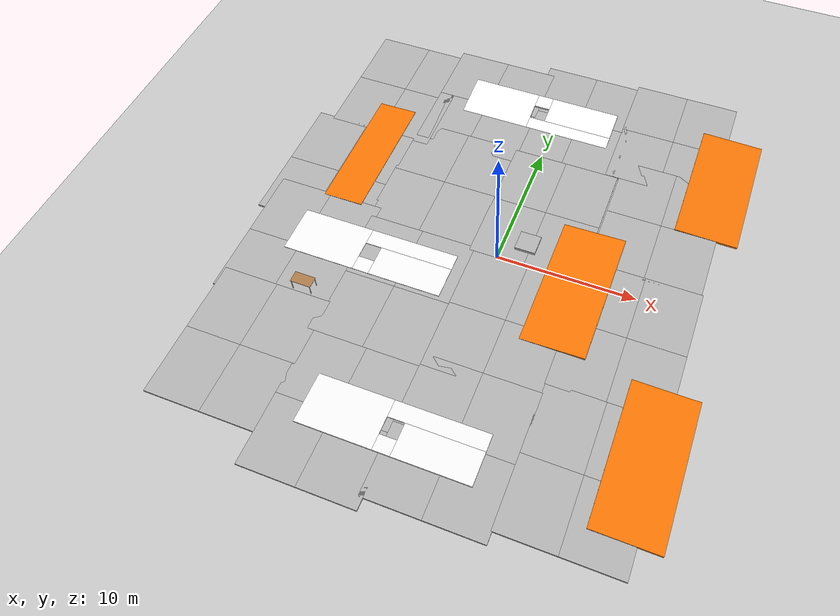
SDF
<sdf version="1.5">
 <world name="svo_world">
  <light name="sun" type="directional">
   <pose>0 0 10 0 -0 0</pose>
   <diffuse>0.8 0.8 0.8 1</diffuse>
   <specular>0.1 0.1 0.1 1</specular>
   <attenuation>
    <range>1000</range>
    <constant>0.9</constant>
    <linear>0.01</linear>
    <quadratic>0.001</quadratic>
   </attenuation>
   <direction>-0.5 0.5 -1</direction>
  </light>
  <model name="ground_plane">
   <static>1</static>
   <link name="link">
    <collision name="collision">
     <geometry><plane><normal>0 0 1</normal><size>100 100</size></plane></geometry>
     <surface><friction><ode><mu>100</mu><mu2>50</mu2></ode></friction></surface>
    </collision>
    <visual name="visual">
     <cast_shadows>0</cast_shadows>
     <geometry><plane><normal>0 0 1</normal><size>100 100</size></plane></geometry>
     <material>
      <script><uri>file://media/materials/scripts/gazebo.material</uri><name>Gazebo/Grey</name></script>
     </material>
    </visual>
   </link>
  </model>
  <atmosphere type="adiabatic"/>
  <physics name="default_physics" default="0" type="ode">
   <max_step_size>0.001</max_step_size>
   <real_time_factor>1</real_time_factor>
   <real_time_update_rate>1000</real_time_update_rate>
   <gravity>0 0 -9.8</gravity>
   <magnetic_field>6e-06 2.3e-05 -4.2e-05</magnetic_field>
  </physics>
  <scene><ambient>0.4 0.4 0.4 1</ambient><background>0.7 0.7 0.7 1</background><shadows>1</shadows></scene>
  <spherical_coordinates>
   <surface_model>EARTH_WGS84</surface_model>
   <latitude_deg>0</latitude_deg>
   <longitude_deg>0</longitude_deg>
   <elevation>0</elevation>
   <heading_deg>0</heading_deg>
  </spherical_coordinates>
  <model name="mud_box">
   <static>1</static>
   <link name="link">
    <collision name="collision"><geometry><box><size>8 10 0.2</size></box></geometry></collision>
    <visual name="visual_1">
     <pose>-2 2.5 0 0 -0 0</pose>
     <cast_shadows>0</cast_shadows>
     <geometry><box><size>4 5 0.2</size></box></geometry>
     <material>
      <script>
       <uri>model://mud_box/materials/scripts</uri>
       <uri>model://mud_box/materials/textures</uri>
       <name>vrc/mud</name>
      </script>
     </material>
    </visual>
    <visual name="visual_2">
     <pose>2 2.5 0 0 -0 0</pose>
     <cast_shadows>0</cast_shadows>
     <geometry><box><size>4 5 0.2</size></box></geometry>
     <material>
      <script>
       <uri>model://mud_box/materials/scripts</uri>
       <uri>model://mud_box/materials/textures</uri>
       <name>vrc/mud</name>
      </script>
     </material>
    </visual>
    <visual name="visual_3">
     <pose>2 -2.5 0 0 -0 0</pose>
     <cast_shadows>0</cast_shadows>
     <geometry><box><size>4 5 0.2</size></box></geometry>
     <material>
      <script>
       <uri>model://mud_box/materials/scripts</uri>
       <uri>model://mud_box/materials/textures</uri>
       <name>vrc/mud</name>
      </script>
     </material>
    </visual>
    <visual name="visual_4">
     <pose>-2 -2.5 0 0 -0 0</pose>
     <cast_shadows>0</cast_shadows>
     <geometry><box><size>4 5 0.2</size></box></geometry>
     <material>
      <script>
       <uri>model://mud_box/materials/scripts</uri>
       <uri>model://mud_box/materials/textures</uri>
       <name>vrc/mud</name>
      </script>
     </material>
    </visual>
   </link>
   <pose>-5.68226 -4.79877 0 0 -0 0</pose>
  </model>
  <model name="mud_box_0">
   <static>1</static>
   <link name="link">
    <collision name="collision"><geometry><box><size>8 10 0.2</size></box></geometry></collision>
    <visual name="visual_1">
     <pose>-2 2.5 0 0 -0 0</pose>
     <cast_shadows>0</cast_shadows>
     <geometry><box><size>4 5 0.2</size></box></geometry>
     <material>
      <script>
       <uri>model://mud_box/materials/scripts</uri>
       <uri>model://mud_box/materials/textures</uri>
       <name>vrc/mud</name>
      </script>
     </material>
    </visual>
    <visual name="visual_2">
     <pose>2 2.5 0 0 -0 0</pose>
     <cast_shadows>0</cast_shadows>
     <geometry><box><size>4 5 0.2</size></box></geometry>
     <material>
      <script>
       <uri>model://mud_box/materials/scripts</uri>
       <uri>model://mud_box/materials/textures</uri>
       <name>vrc/mud</name>
      </script>
     </material>
    </visual>
    <visual name="visual_3">
     <pose>2 -2.5 0 0 -0 0</pose>
     <cast_shadows>0</cast_shadows>
     <geometry><box><size>4 5 0.2</size></box></geometry>
     <material>
      <script>
       <uri>model://mud_box/materials/scripts</uri>
       <uri>model://mud_box/materials/textures</uri>
       <name>vrc/mud</name>
      </script>
     </material>
    </visual>
    <visual name="visual_4">
     <pose>-2 -2.5 0 0 -0 0</pose>
     <cast_shadows>0</cast_shadows>
     <geometry><box><size>4 5 0.2</size></box></geometry>
     <material>
      <script>
       <uri>model://mud_box/materials/scripts</uri>
       <uri>model://mud_box/materials/textures</uri>
       <name>vrc/mud</name>
      </script>
     </material>
    </visual>
   </link>
   <pose>-5.96642 5.00089 0 0 -0 0</pose>
  </model>
  <model name="mud_box_1">
   <static>1</static>
   <link name="link">
    <collision name="collision"><geometry><box><size>8 10 0.2</size></box></geometry></collision>
    <visual name="visual_1">
     <pose>-2 2.5 0 0 -0 0</pose>
     <cast_shadows>0</cast_shadows>
     <geometry><box><size>4 5 0.2</size></box></geometry>
     <material>
      <script>
       <uri>model://mud_box/materials/scripts</uri>
       <uri>model://mud_box/materials/textures</uri>
       <name>vrc/mud</name>
      </script>
     </material>
    </visual>
    <visual name="visual_2">
     <pose>2 2.5 0 0 -0 0</pose>
     <cast_shadows>0</cast_shadows>
     <geometry><box><size>4 5 0.2</size></box></geometry>
     <material>
      <script>
       <uri>model://mud_box/materials/scripts</uri>
       <uri>model://mud_box/materials/textures</uri>
       <name>vrc/mud</name>
      </script>
     </material>
    </visual>
    <visual name="visual_3">
     <pose>2 -2.5 0 0 -0 0</pose>
     <cast_shadows>0</cast_shadows>
     <geometry><box><size>4 5 0.2</size></box></geometry>
     <material>
      <script>
       <uri>model://mud_box/materials/scripts</uri>
       <uri>model://mud_box/materials/textures</uri>
       <name>vrc/mud</name>
      </script>
     </material>
    </visual>
    <visual name="visual_4">
     <pose>-2 -2.5 0 0 -0 0</pose>
     <cast_shadows>0</cast_shadows>
     <geometry><box><size>4 5 0.2</size></box></geometry>
     <material>
      <script>
       <uri>model://mud_box/materials/scripts</uri>
       <uri>model://mud_box/materials/textures</uri>
       <name>vrc/mud</name>
      </script>
     </material>
    </visual>
   </link>
   <pose>-5.37597 -14.6349 0 0 -0 0</pose>
  </model>
  <model name="mud_box_3">
   <static>1</static>
   <link name="link">
    <collision name="collision"><geometry><box><size>8 10 0.2</size></box></geometry></collision>
    <visual name="visual_1">
     <pose>-2 2.5 0 0 -0 0</pose>
     <cast_shadows>0</cast_shadows>
     <geometry><box><size>4 5 0.2</size></box></geometry>
     <material>
      <script>
       <uri>model://mud_box/materials/scripts</uri>
       <uri>model://mud_box/materials/textures</uri>
       <name>vrc/mud</name>
      </script>
     </material>
    </visual>
    <visual name="visual_2">
     <pose>2 2.5 0 0 -0 0</pose>
     <cast_shadows>0</cast_shadows>
     <geometry><box><size>4 5 0.2</size></box></geometry>
     <material>
      <script>
       <uri>model://mud_box/materials/scripts</uri>
       <uri>model://mud_box/materials/textures</uri>
       <name>vrc/mud</name>
      </script>
     </material>
    </visual>
    <visual name="visual_3">
     <pose>2 -2.5 0 0 -0 0</pose>
     <cast_shadows>0</cast_shadows>
     <geometry><box><size>4 5 0.2</size></box></geometry>
     <material>
      <script>
       <uri>model://mud_box/materials/scripts</uri>
       <uri>model://mud_box/materials/textures</uri>
       <name>vrc/mud</name>
      </script>
     </material>
    </visual>
    <visual name="visual_4">
     <pose>-2 -2.5 0 0 -0 0</pose>
     <cast_shadows>0</cast_shadows>
     <geometry><box><size>4 5 0.2</size></box></geometry>
     <material>
      <script>
       <uri>model://mud_box/materials/scripts</uri>
       <uri>model://mud_box/materials/textures</uri>
       <name>vrc/mud</name>
      </script>
     </material>
    </visual>
   </link>
   <pose>1.99002 4.88427 0 0 -0 0</pose>
  </model>
  <model name="mud_box_4">
   <static>1</static>
   <link name="link">
    <collision name="collision"><geometry><box><size>8 10 0.2</size></box></geometry></collision>
    <visual name="visual_1">
     <pose>-2 2.5 0 0 -0 0</pose>
     <cast_shadows>0</cast_shadows>
     <geometry><box><size>4 5 0.2</size></box></geometry>
     <material>
      <script>
       <uri>model://mud_box/materials/scripts</uri>
       <uri>model://mud_box/materials/textures</uri>
       <name>vrc/mud</name>
      </script>
     </material>
    </visual>
    <visual name="visual_2">
     <pose>2 2.5 0 0 -0 0</pose>
     <cast_shadows>0</cast_shadows>
     <geometry><box><size>4 5 0.2</size></box></geometry>
     <material>
      <script>
       <uri>model://mud_box/materials/scripts</uri>
       <uri>model://mud_box/materials/textures</uri>
       <name>vrc/mud</name>
      </script>
     </material>
    </visual>
    <visual name="visual_3">
     <pose>2 -2.5 0 0 -0 0</pose>
     <cast_shadows>0</cast_shadows>
     <geometry><box><size>4 5 0.2</size></box></geometry>
     <material>
      <script>
       <uri>model://mud_box/materials/scripts</uri>
       <uri>model://mud_box/materials/textures</uri>
       <name>vrc/mud</name>
      </script>
     </material>
    </visual>
    <visual name="visual_4">
     <pose>-2 -2.5 0 0 -0 0</pose>
     <cast_shadows>0</cast_shadows>
     <geometry><box><size>4 5 0.2</size></box></geometry>
     <material>
      <script>
       <uri>model://mud_box/materials/scripts</uri>
       <uri>model://mud_box/materials/textures</uri>
       <name>vrc/mud</name>
      </script>
     </material>
    </visual>
   </link>
   <pose>10.1818 -3.15087 0 0 -0 0</pose>
  </model>
  <model name="mud_box_5">
   <static>1</static>
   <link name="link">
    <collision name="collision"><geometry><box><size>8 10 0.2</size></box></geometry></collision>
    <visual name="visual_1">
     <pose>-2 2.5 0 0 -0 0</pose>
     <cast_shadows>0</cast_shadows>
     <geometry><box><size>4 5 0.2</size></box></geometry>
     <material>
      <script>
       <uri>model://mud_box/materials/scripts</uri>
       <uri>model://mud_box/materials/textures</uri>
       <name>vrc/mud</name>
      </script>
     </material>
    </visual>
    <visual name="visual_2">
     <pose>2 2.5 0 0 -0 0</pose>
     <cast_shadows>0</cast_shadows>
     <geometry><box><size>4 5 0.2</size></box></geometry>
     <material>
      <script>
       <uri>model://mud_box/materials/scripts</uri>
       <uri>model://mud_box/materials/textures</uri>
       <name>vrc/mud</name>
      </script>
     </material>
    </visual>
    <visual name="visual_3">
     <pose>2 -2.5 0 0 -0 0</pose>
     <cast_shadows>0</cast_shadows>
     <geometry><box><size>4 5 0.2</size></box></geometry>
     <material>
      <script>
       <uri>model://mud_box/materials/scripts</uri>
       <uri>model://mud_box/materials/textures</uri>
       <name>vrc/mud</name>
      </script>
     </material>
    </visual>
    <visual name="visual_4">
     <pose>-2 -2.5 0 0 -0 0</pose>
     <cast_shadows>0</cast_shadows>
     <geometry><box><size>4 5 0.2</size></box></geometry>
     <material>
      <script>
       <uri>model://mud_box/materials/scripts</uri>
       <uri>model://mud_box/materials/textures</uri>
       <name>vrc/mud</name>
      </script>
     </material>
    </visual>
   </link>
   <pose>10.0851 6.64151 0 0 -0 0</pose>
  </model>
  <model name="mud_box_6">
   <static>1</static>
   <link name="link">
    <collision name="collision"><geometry><box><size>8 10 0.2</size></box></geometry></collision>
    <visual name="visual_1">
     <pose>-2 2.5 0 0 -0 0</pose>
     <cast_shadows>0</cast_shadows>
     <geometry><box><size>4 5 0.2</size></box></geometry>
     <material>
      <script>
       <uri>model://mud_box/materials/scripts</uri>
       <uri>model://mud_box/materials/textures</uri>
       <name>vrc/mud</name>
      </script>
     </material>
    </visual>
    <visual name="visual_2">
     <pose>2 2.5 0 0 -0 0</pose>
     <cast_shadows>0</cast_shadows>
     <geometry><box><size>4 5 0.2</size></box></geometry>
     <material>
      <script>
       <uri>model://mud_box/materials/scripts</uri>
       <uri>model://mud_box/materials/textures</uri>
       <name>vrc/mud</name>
      </script>
     </material>
    </visual>
    <visual name="visual_3">
     <pose>2 -2.5 0 0 -0 0</pose>
     <cast_shadows>0</cast_shadows>
     <geometry><box><size>4 5 0.2</size></box></geometry>
     <material>
      <script>
       <uri>model://mud_box/materials/scripts</uri>
       <uri>model://mud_box/materials/textures</uri>
       <name>vrc/mud</name>
      </script>
     </material>
    </visual>
    <visual name="visual_4">
     <pose>-2 -2.5 0 0 -0 0</pose>
     <cast_shadows>0</cast_shadows>
     <geometry><box><size>4 5 0.2</size></box></geometry>
     <material>
      <script>
       <uri>model://mud_box/materials/scripts</uri>
       <uri>model://mud_box/materials/textures</uri>
       <name>vrc/mud</name>
      </script>
     </material>
    </visual>
   </link>
   <pose>10.2281 -13.0017 0 0 -0 0</pose>
  </model>
  <model name="mud_box_7">
   <static>1</static>
   <link name="link">
    <collision name="collision"><geometry><box><size>8 10 0.2</size></box></geometry></collision>
    <visual name="visual_1">
     <pose>-2 2.5 0 0 -0 0</pose>
     <cast_shadows>0</cast_shadows>
     <geometry><box><size>4 5 0.2</size></box></geometry>
     <material>
      <script>
       <uri>model://mud_box/materials/scripts</uri>
       <uri>model://mud_box/materials/textures</uri>
       <name>vrc/mud</name>
      </script>
     </material>
    </visual>
    <visual name="visual_2">
     <pose>2 2.5 0 0 -0 0</pose>
     <cast_shadows>0</cast_shadows>
     <geometry><box><size>4 5 0.2</size></box></geometry>
     <material>
      <script>
       <uri>model://mud_box/materials/scripts</uri>
       <uri>model://mud_box/materials/textures</uri>
       <name>vrc/mud</name>
      </script>
     </material>
    </visual>
    <visual name="visual_3">
     <pose>2 -2.5 0 0 -0 0</pose>
     <cast_shadows>0</cast_shadows>
     <geometry><box><size>4 5 0.2</size></box></geometry>
     <material>
      <script>
       <uri>model://mud_box/materials/scripts</uri>
       <uri>model://mud_box/materials/textures</uri>
       <name>vrc/mud</name>
      </script>
     </material>
    </visual>
    <visual name="visual_4">
     <pose>-2 -2.5 0 0 -0 0</pose>
     <cast_shadows>0</cast_shadows>
     <geometry><box><size>4 5 0.2</size></box></geometry>
     <material>
      <script>
       <uri>model://mud_box/materials/scripts</uri>
       <uri>model://mud_box/materials/textures</uri>
       <name>vrc/mud</name>
      </script>
     </material>
    </visual>
   </link>
   <pose>2.3022 -13.8279 0 0 -0 0</pose>
  </model>
  <model name="mud_box_8">
   <static>1</static>
   <link name="link">
    <collision name="collision"><geometry><box><size>8 10 0.2</size></box></geometry></collision>
    <visual name="visual_1">
     <pose>-2 2.5 0 0 -0 0</pose>
     <cast_shadows>0</cast_shadows>
     <geometry><box><size>4 5 0.2</size></box></geometry>
     <material>
      <script>
       <uri>model://mud_box/materials/scripts</uri>
       <uri>model://mud_box/materials/textures</uri>
       <name>vrc/mud</name>
      </script>
     </material>
    </visual>
    <visual name="visual_2">
     <pose>2 2.5 0 0 -0 0</pose>
     <cast_shadows>0</cast_shadows>
     <geometry><box><size>4 5 0.2</size></box></geometry>
     <material>
      <script>
       <uri>model://mud_box/materials/scripts</uri>
       <uri>model://mud_box/materials/textures</uri>
       <name>vrc/mud</name>
      </script>
     </material>
    </visual>
    <visual name="visual_3">
     <pose>2 -2.5 0 0 -0 0</pose>
     <cast_shadows>0</cast_shadows>
     <geometry><box><size>4 5 0.2</size></box></geometry>
     <material>
      <script>
       <uri>model://mud_box/materials/scripts</uri>
       <uri>model://mud_box/materials/textures</uri>
       <name>vrc/mud</name>
      </script>
     </material>
    </visual>
    <visual name="visual_4">
     <pose>-2 -2.5 0 0 -0 0</pose>
     <cast_shadows>0</cast_shadows>
     <geometry><box><size>4 5 0.2</size></box></geometry>
     <material>
      <script>
       <uri>model://mud_box/materials/scripts</uri>
       <uri>model://mud_box/materials/textures</uri>
       <name>vrc/mud</name>
      </script>
     </material>
    </visual>
   </link>
   <pose>2.3135 -4.65178 0 0 -0 0</pose>
  </model>
  <model name="mud_box_9">
   <static>1</static>
   <link name="link">
    <collision name="collision"><geometry><box><size>8 10 0.2</size></box></geometry></collision>
    <visual name="visual_1">
     <pose>-2 2.5 0 0 -0 0</pose>
     <cast_shadows>0</cast_shadows>
     <geometry><box><size>4 5 0.2</size></box></geometry>
     <material>
      <script>
       <uri>model://mud_box/materials/scripts</uri>
       <uri>model://mud_box/materials/textures</uri>
       <name>vrc/mud</name>
      </script>
     </material>
    </visual>
    <visual name="visual_2">
     <pose>2 2.5 0 0 -0 0</pose>
     <cast_shadows>0</cast_shadows>
     <geometry><box><size>4 5 0.2</size></box></geometry>
     <material>
      <script>
       <uri>model://mud_box/materials/scripts</uri>
       <uri>model://mud_box/materials/textures</uri>
       <name>vrc/mud</name>
      </script>
     </material>
    </visual>
    <visual name="visual_3">
     <pose>2 -2.5 0 0 -0 0</pose>
     <cast_shadows>0</cast_shadows>
     <geometry><box><size>4 5 0.2</size></box></geometry>
     <material>
      <script>
       <uri>model://mud_box/materials/scripts</uri>
       <uri>model://mud_box/materials/textures</uri>
       <name>vrc/mud</name>
      </script>
     </material>
    </visual>
    <visual name="visual_4">
     <pose>-2 -2.5 0 0 -0 0</pose>
     <cast_shadows>0</cast_shadows>
     <geometry><box><size>4 5 0.2</size></box></geometry>
     <material>
      <script>
       <uri>model://mud_box/materials/scripts</uri>
       <uri>model://mud_box/materials/textures</uri>
       <name>vrc/mud</name>
      </script>
     </material>
    </visual>
   </link>
   <pose>-13.1914 -12.4554 0 0 -0 0</pose>
  </model>
  <model name="mud_box_10">
   <static>1</static>
   <link name="link">
    <collision name="collision"><geometry><box><size>8 10 0.2</size></box></geometry></collision>
    <visual name="visual_1">
     <pose>-2 2.5 0 0 -0 0</pose>
     <cast_shadows>0</cast_shadows>
     <geometry><box><size>4 5 0.2</size></box></geometry>
     <material>
      <script>
       <uri>model://mud_box/materials/scripts</uri>
       <uri>model://mud_box/materials/textures</uri>
       <name>vrc/mud</name>
      </script>
     </material>
    </visual>
    <visual name="visual_2">
     <pose>2 2.5 0 0 -0 0</pose>
     <cast_shadows>0</cast_shadows>
     <geometry><box><size>4 5 0.2</size></box></geometry>
     <material>
      <script>
       <uri>model://mud_box/materials/scripts</uri>
       <uri>model://mud_box/materials/textures</uri>
       <name>vrc/mud</name>
      </script>
     </material>
    </visual>
    <visual name="visual_3">
     <pose>2 -2.5 0 0 -0 0</pose>
     <cast_shadows>0</cast_shadows>
     <geometry><box><size>4 5 0.2</size></box></geometry>
     <material>
      <script>
       <uri>model://mud_box/materials/scripts</uri>
       <uri>model://mud_box/materials/textures</uri>
       <name>vrc/mud</name>
      </script>
     </material>
    </visual>
    <visual name="visual_4">
     <pose>-2 -2.5 0 0 -0 0</pose>
     <cast_shadows>0</cast_shadows>
     <geometry><box><size>4 5 0.2</size></box></geometry>
     <material>
      <script>
       <uri>model://mud_box/materials/scripts</uri>
       <uri>model://mud_box/materials/textures</uri>
       <name>vrc/mud</name>
      </script>
     </material>
    </visual>
   </link>
   <pose>-13.3232 -3.93027 0 0 -0 0</pose>
  </model>
  <model name="mud_box_11">
   <static>1</static>
   <link name="link">
    <collision name="collision"><geometry><box><size>8 10 0.2</size></box></geometry></collision>
    <visual name="visual_1">
     <pose>-2 2.5 0 0 -0 0</pose>
     <cast_shadows>0</cast_shadows>
     <geometry><box><size>4 5 0.2</size></box></geometry>
     <material>
      <script>
       <uri>model://mud_box/materials/scripts</uri>
       <uri>model://mud_box/materials/textures</uri>
       <name>vrc/mud</name>
      </script>
     </material>
    </visual>
    <visual name="visual_2">
     <pose>2 2.5 0 0 -0 0</pose>
     <cast_shadows>0</cast_shadows>
     <geometry><box><size>4 5 0.2</size></box></geometry>
     <material>
      <script>
       <uri>model://mud_box/materials/scripts</uri>
       <uri>model://mud_box/materials/textures</uri>
       <name>vrc/mud</name>
      </script>
     </material>
    </visual>
    <visual name="visual_3">
     <pose>2 -2.5 0 0 -0 0</pose>
     <cast_shadows>0</cast_shadows>
     <geometry><box><size>4 5 0.2</size></box></geometry>
     <material>
      <script>
       <uri>model://mud_box/materials/scripts</uri>
       <uri>model://mud_box/materials/textures</uri>
       <name>vrc/mud</name>
      </script>
     </material>
    </visual>
    <visual name="visual_4">
     <pose>-2 -2.5 0 0 -0 0</pose>
     <cast_shadows>0</cast_shadows>
     <geometry><box><size>4 5 0.2</size></box></geometry>
     <material>
      <script>
       <uri>model://mud_box/materials/scripts</uri>
       <uri>model://mud_box/materials/textures</uri>
       <name>vrc/mud</name>
      </script>
     </material>
    </visual>
   </link>
   <pose>-13.8399 3.21916 0 0 -0 0</pose>
  </model>
  <model name="mud_box_12">
   <static>1</static>
   <link name="link">
    <collision name="collision"><geometry><box><size>8 10 0.2</size></box></geometry></collision>
    <visual name="visual_1">
     <pose>-2 2.5 0 0 -0 0</pose>
     <cast_shadows>0</cast_shadows>
     <geometry><box><size>4 5 0.2</size></box></geometry>
     <material>
      <script>
       <uri>model://mud_box/materials/scripts</uri>
       <uri>model://mud_box/materials/textures</uri>
       <name>vrc/mud</name>
      </script>
     </material>
    </visual>
    <visual name="visual_2">
     <pose>2 2.5 0 0 -0 0</pose>
     <cast_shadows>0</cast_shadows>
     <geometry><box><size>4 5 0.2</size></box></geometry>
     <material>
      <script>
       <uri>model://mud_box/materials/scripts</uri>
       <uri>model://mud_box/materials/textures</uri>
       <name>vrc/mud</name>
      </script>
     </material>
    </visual>
    <visual name="visual_3">
     <pose>2 -2.5 0 0 -0 0</pose>
     <cast_shadows>0</cast_shadows>
     <geometry><box><size>4 5 0.2</size></box></geometry>
     <material>
      <script>
       <uri>model://mud_box/materials/scripts</uri>
       <uri>model://mud_box/materials/textures</uri>
       <name>vrc/mud</name>
      </script>
     </material>
    </visual>
    <visual name="visual_4">
     <pose>-2 -2.5 0 0 -0 0</pose>
     <cast_shadows>0</cast_shadows>
     <geometry><box><size>4 5 0.2</size></box></geometry>
     <material>
      <script>
       <uri>model://mud_box/materials/scripts</uri>
       <uri>model://mud_box/materials/textures</uri>
       <name>vrc/mud</name>
      </script>
     </material>
    </visual>
   </link>
   <pose>9.03571 14.9161 0 0 -0 0</pose>
  </model>
  <model name="mud_box_13">
   <static>1</static>
   <link name="link">
    <collision name="collision"><geometry><box><size>8 10 0.2</size></box></geometry></collision>
    <visual name="visual_1">
     <pose>-2 2.5 0 0 -0 0</pose>
     <cast_shadows>0</cast_shadows>
     <geometry><box><size>4 5 0.2</size></box></geometry>
     <material>
      <script>
       <uri>model://mud_box/materials/scripts</uri>
       <uri>model://mud_box/materials/textures</uri>
       <name>vrc/mud</name>
      </script>
     </material>
    </visual>
    <visual name="visual_2">
     <pose>2 2.5 0 0 -0 0</pose>
     <cast_shadows>0</cast_shadows>
     <geometry><box><size>4 5 0.2</size></box></geometry>
     <material>
      <script>
       <uri>model://mud_box/materials/scripts</uri>
       <uri>model://mud_box/materials/textures</uri>
       <name>vrc/mud</name>
      </script>
     </material>
    </visual>
    <visual name="visual_3">
     <pose>2 -2.5 0 0 -0 0</pose>
     <cast_shadows>0</cast_shadows>
     <geometry><box><size>4 5 0.2</size></box></geometry>
     <material>
      <script>
       <uri>model://mud_box/materials/scripts</uri>
       <uri>model://mud_box/materials/textures</uri>
       <name>vrc/mud</name>
      </script>
     </material>
    </visual>
    <visual name="visual_4">
     <pose>-2 -2.5 0 0 -0 0</pose>
     <cast_shadows>0</cast_shadows>
     <geometry><box><size>4 5 0.2</size></box></geometry>
     <material>
      <script>
       <uri>model://mud_box/materials/scripts</uri>
       <uri>model://mud_box/materials/textures</uri>
       <name>vrc/mud</name>
      </script>
     </material>
    </visual>
   </link>
   <pose>1.62983 14.5106 0 0 -0 0</pose>
  </model>
  <model name="mud_box_14">
   <static>1</static>
   <link name="link">
    <collision name="collision"><geometry><box><size>8 10 0.2</size></box></geometry></collision>
    <visual name="visual_1">
     <pose>-2 2.5 0 0 -0 0</pose>
     <cast_shadows>0</cast_shadows>
     <geometry><box><size>4 5 0.2</size></box></geometry>
     <material>
      <script>
       <uri>model://mud_box/materials/scripts</uri>
       <uri>model://mud_box/materials/textures</uri>
       <name>vrc/mud</name>
      </script>
     </material>
    </visual>
    <visual name="visual_2">
     <pose>2 2.5 0 0 -0 0</pose>
     <cast_shadows>0</cast_shadows>
     <geometry><box><size>4 5 0.2</size></box></geometry>
     <material>
      <script>
       <uri>model://mud_box/materials/scripts</uri>
       <uri>model://mud_box/materials/textures</uri>
       <name>vrc/mud</name>
      </script>
     </material>
    </visual>
    <visual name="visual_3">
     <pose>2 -2.5 0 0 -0 0</pose>
     <cast_shadows>0</cast_shadows>
     <geometry><box><size>4 5 0.2</size></box></geometry>
     <material>
      <script>
       <uri>model://mud_box/materials/scripts</uri>
       <uri>model://mud_box/materials/textures</uri>
       <name>vrc/mud</name>
      </script>
     </material>
    </visual>
    <visual name="visual_4">
     <pose>-2 -2.5 0 0 -0 0</pose>
     <cast_shadows>0</cast_shadows>
     <geometry><box><size>4 5 0.2</size></box></geometry>
     <material>
      <script>
       <uri>model://mud_box/materials/scripts</uri>
       <uri>model://mud_box/materials/textures</uri>
       <name>vrc/mud</name>
      </script>
     </material>
    </visual>
   </link>
   <pose>-5.79195 13.6955 0 0 -0 0</pose>
  </model>
  <model name="mud_box_15">
   <static>1</static>
   <link name="link">
    <collision name="collision"><geometry><box><size>8 10 0.2</size></box></geometry></collision>
    <visual name="visual_1">
     <pose>-2 2.5 0 0 -0 0</pose>
     <cast_shadows>0</cast_shadows>
     <geometry><box><size>4 5 0.2</size></box></geometry>
     <material>
      <script>
       <uri>model://mud_box/materials/scripts</uri>
       <uri>model://mud_box/materials/textures</uri>
       <name>vrc/mud</name>
      </script>
     </material>
    </visual>
    <visual name="visual_2">
     <pose>2 2.5 0 0 -0 0</pose>
     <cast_shadows>0</cast_shadows>
     <geometry><box><size>4 5 0.2</size></box></geometry>
     <material>
      <script>
       <uri>model://mud_box/materials/scripts</uri>
       <uri>model://mud_box/materials/textures</uri>
       <name>vrc/mud</name>
      </script>
     </material>
    </visual>
    <visual name="visual_3">
     <pose>2 -2.5 0 0 -0 0</pose>
     <cast_shadows>0</cast_shadows>
     <geometry><box><size>4 5 0.2</size></box></geometry>
     <material>
      <script>
       <uri>model://mud_box/materials/scripts</uri>
       <uri>model://mud_box/materials/textures</uri>
       <name>vrc/mud</name>
      </script>
     </material>
    </visual>
    <visual name="visual_4">
     <pose>-2 -2.5 0 0 -0 0</pose>
     <cast_shadows>0</cast_shadows>
     <geometry><box><size>4 5 0.2</size></box></geometry>
     <material>
      <script>
       <uri>model://mud_box/materials/scripts</uri>
       <uri>model://mud_box/materials/textures</uri>
       <name>vrc/mud</name>
      </script>
     </material>
    </visual>
   </link>
   <pose>-12.6627 13.0185 0 0 -0 0</pose>
  </model>
  <model name="window2">
   <pose>-1.52133 -12.523 0.093793 1.55967 -0 0</pose>
   <link name="Wall_0">
    <visual name="Wall_0_Visual_0">
     <pose>-3.2425 0 1.75 0 -0 0</pose>
     <geometry><box><size>5.265 0.15 3.5</size></box></geometry>
     <material>
      <script>
       <uri>model://window_door/materials/scripts</uri>
       <uri>model://window_door/materials/textures</uri>
       <name>Wall/NiceWall</name>
      </script>
      <ambient>1 1 1 1</ambient>
     </material>
    </visual>
    <collision name="Wall_0_Collision_0">
     <geometry><box><size>5.265 0.15 3.5</size></box></geometry>
     <pose>-3.2425 0 1.75 0 -0 0</pose>
    </collision>
    <visual name="Wall_0_Visual_1">
     <pose>2.6325 0 0.6 0 -0 0</pose>
     <geometry><box><size>6.485 0.15 1.2</size></box></geometry>
     <material>
      <script>
       <uri>model://window_door/materials/scripts</uri>
       <uri>model://window_door/materials/textures</uri>
       <name>Wall/NiceWall</name>
      </script>
      <ambient>1 1 1 1</ambient>
     </material>
    </visual>
    <collision name="Wall_0_Collision_1">
     <geometry><box><size>6.485 0.15 1.2</size></box></geometry>
     <pose>2.6325 0 0.6 0 -0 0</pose>
    </collision>
    <visual name="Wall_0_Visual_2">
     <pose>3.2325 0 2.35 0 -0 0</pose>
     <geometry><box><size>5.285 0.15 2.3</size></box></geometry>
     <material>
      <script>
       <uri>model://window_door/materials/scripts</uri>
       <uri>model://window_door/materials/textures</uri>
       <name>Wall/NiceWall</name>
      </script>
      <ambient>1 1 1 1</ambient>
     </material>
    </visual>
    <collision name="Wall_0_Collision_2">
     <geometry><box><size>5.285 0.15 2.3</size></box></geometry>
     <pose>3.2325 0 2.35 0 -0 0</pose>
    </collision>
    <visual name="Wall_0_Visual_3">
     <pose>-0.01 0 2.95 0 -0 0</pose>
     <geometry><box><size>1.2 0.15 1.1</size></box></geometry>
     <material>
      <script>
       <uri>model://window_door/materials/scripts</uri>
       <uri>model://window_door/materials/textures</uri>
       <name>Wall/NiceWall</name>
      </script>
      <ambient>1 1 1 1</ambient>
     </material>
    </visual>
    <collision name="Wall_0_Collision_3">
     <geometry><box><size>1.2 0.15 1.1</size></box></geometry>
     <pose>-0.01 0 2.95 0 -0 0</pose>
    </collision>
   </link>
   <static>1</static>
  </model>
  <model name="window2_0">
   <pose>-8.39086 -0.992257 0.080248 1.57646 -0 0</pose>
   <link name="Wall_0">
    <visual name="Wall_0_Visual_0">
     <pose>-3.2425 0 1.75 0 -0 0</pose>
     <geometry><box><size>5.265 0.15 3.5</size></box></geometry>
     <material>
      <script>
       <uri>model://window_door/materials/scripts</uri>
       <uri>model://window_door/materials/textures</uri>
       <name>Wall/NiceWall</name>
      </script>
      <ambient>1 1 1 1</ambient>
     </material>
    </visual>
    <collision name="Wall_0_Collision_0">
     <geometry><box><size>5.265 0.15 3.5</size></box></geometry>
     <pose>-3.2425 0 1.75 0 -0 0</pose>
    </collision>
    <visual name="Wall_0_Visual_1">
     <pose>2.6325 0 0.6 0 -0 0</pose>
     <geometry><box><size>6.485 0.15 1.2</size></box></geometry>
     <material>
      <script>
       <uri>model://window_door/materials/scripts</uri>
       <uri>model://window_door/materials/textures</uri>
       <name>Wall/NiceWall</name>
      </script>
      <ambient>1 1 1 1</ambient>
     </material>
    </visual>
    <collision name="Wall_0_Collision_1">
     <geometry><box><size>6.485 0.15 1.2</size></box></geometry>
     <pose>2.6325 0 0.6 0 -0 0</pose>
    </collision>
    <visual name="Wall_0_Visual_2">
     <pose>3.2325 0 2.35 0 -0 0</pose>
     <geometry><box><size>5.285 0.15 2.3</size></box></geometry>
     <material>
      <script>
       <uri>model://window_door/materials/scripts</uri>
       <uri>model://window_door/materials/textures</uri>
       <name>Wall/NiceWall</name>
      </script>
      <ambient>1 1 1 1</ambient>
     </material>
    </visual>
    <collision name="Wall_0_Collision_2">
     <geometry><box><size>5.285 0.15 2.3</size></box></geometry>
     <pose>3.2325 0 2.35 0 -0 0</pose>
    </collision>
    <visual name="Wall_0_Visual_3">
     <pose>-0.01 0 2.95 0 -0 0</pose>
     <geometry><box><size>1.2 0.15 1.1</size></box></geometry>
     <material>
      <script>
       <uri>model://window_door/materials/scripts</uri>
       <uri>model://window_door/materials/textures</uri>
       <name>Wall/NiceWall</name>
      </script>
      <ambient>1 1 1 1</ambient>
     </material>
    </visual>
    <collision name="Wall_0_Collision_3">
     <geometry><box><size>1.2 0.15 1.1</size></box></geometry>
     <pose>-0.01 0 2.95 0 -0 0</pose>
    </collision>
   </link>
   <static>1</static>
  </model>
  <model name="window2_1">
   <pose>-1.51572 12.2638 0 -1.44383 0 0</pose>
   <link name="Wall_0">
    <visual name="Wall_0_Visual_0">
     <pose>-3.2425 0 1.75 0 -0 0</pose>
     <geometry><box><size>5.265 0.15 3.5</size></box></geometry>
     <material>
      <script>
       <uri>model://window_door/materials/scripts</uri>
       <uri>model://window_door/materials/textures</uri>
       <name>Wall/NiceWall</name>
      </script>
      <ambient>1 1 1 1</ambient>
     </material>
    </visual>
    <collision name="Wall_0_Collision_0">
     <geometry><box><size>5.265 0.15 3.5</size></box></geometry>
     <pose>-3.2425 0 1.75 0 -0 0</pose>
    </collision>
    <visual name="Wall_0_Visual_1">
     <pose>2.6325 0 0.6 0 -0 0</pose>
     <geometry><box><size>6.485 0.15 1.2</size></box></geometry>
     <material>
      <script>
       <uri>model://window_door/materials/scripts</uri>
       <uri>model://window_door/materials/textures</uri>
       <name>Wall/NiceWall</name>
      </script>
      <ambient>1 1 1 1</ambient>
     </material>
    </visual>
    <collision name="Wall_0_Collision_1">
     <geometry><box><size>6.485 0.15 1.2</size></box></geometry>
     <pose>2.6325 0 0.6 0 -0 0</pose>
    </collision>
    <visual name="Wall_0_Visual_2">
     <pose>3.2325 0 2.35 0 -0 0</pose>
     <geometry><box><size>5.285 0.15 2.3</size></box></geometry>
     <material>
      <script>
       <uri>model://window_door/materials/scripts</uri>
       <uri>model://window_door/materials/textures</uri>
       <name>Wall/NiceWall</name>
      </script>
      <ambient>1 1 1 1</ambient>
     </material>
    </visual>
    <collision name="Wall_0_Collision_2">
     <geometry><box><size>5.285 0.15 2.3</size></box></geometry>
     <pose>3.2325 0 2.35 0 -0 0</pose>
    </collision>
    <visual name="Wall_0_Visual_3">
     <pose>-0.01 0 2.95 0 -0 0</pose>
     <geometry><box><size>1.2 0.15 1.1</size></box></geometry>
     <material>
      <script>
       <uri>model://window_door/materials/scripts</uri>
       <uri>model://window_door/materials/textures</uri>
       <name>Wall/NiceWall</name>
      </script>
      <ambient>1 1 1 1</ambient>
     </material>
    </visual>
    <collision name="Wall_0_Collision_3">
     <geometry><box><size>1.2 0.15 1.1</size></box></geometry>
     <pose>-0.01 0 2.95 0 -0 0</pose>
    </collision>
   </link>
   <static>1</static>
  </model>
  <model name="wall">
   <pose>-15.3228 5.82852 0 -2e-05 1.55454 -2.4e-05</pose>
   <link name="Wall_0">
    <collision name="Wall_0_Collision">
     <geometry><box><size>10 0.15 4.5</size></box></geometry>
     <pose>0 0 2.25 0 -0 0</pose>
    </collision>
    <visual name="Wall_0_Visual">
     <pose>0 0 2.25 0 -0 0</pose>
     <geometry><box><size>10 0.15 4.5</size></box></geometry>
     <material>
      <script>
       <uri>model://wall/materials/scripts</uri>
       <uri>model://wall/materials/textures</uri>
       <name>Wall/NiceWall</name>
      </script>
      <ambient>0.996078 0.47451 0.0196078 1</ambient>
     </material>
    </visual>
    <pose>0 -0 0 0 0 -1.5708</pose>
   </link>
   <static>1</static>
  </model>
  <model name="wall_0">
   <pose>8.10955 -0.669266 0.170192 3.14158 -1.54059 -3.14159</pose>
   <link name="Wall_0">
    <collision name="Wall_0_Collision">
     <geometry><box><size>10 0.15 4.5</size></box></geometry>
     <pose>0 0 2.25 0 -0 0</pose>
    </collision>
    <visual name="Wall_0_Visual">
     <pose>0 0 2.25 0 -0 0</pose>
     <geometry><box><size>10 0.15 4.5</size></box></geometry>
     <material>
      <script>
       <uri>model://wall/materials/scripts</uri>
       <uri>model://wall/materials/textures</uri>
       <name>Wall/NiceWall</name>
      </script>
      <ambient>0.996078 0.47451 0.0196078 1</ambient>
     </material>
    </visual>
    <pose>0 -0 0 0 0 -1.5708</pose>
   </link>
   <static>1</static>
  </model>
  <model name="wall_1">
   <pose>15.7615 -10.9737 0.056788 3.2e-05 -1.56052 -3.5e-05</pose>
   <link name="Wall_0">
    <collision name="Wall_0_Collision">
     <geometry><box><size>10 0.15 4.5</size></box></geometry>
     <pose>0 0 2.25 0 -0 0</pose>
    </collision>
    <visual name="Wall_0_Visual">
     <pose>0 0 2.25 0 -0 0</pose>
     <geometry><box><size>10 0.15 4.5</size></box></geometry>
     <material>
      <script>
       <uri>model://wall/materials/scripts</uri>
       <uri>model://wall/materials/textures</uri>
       <name>Wall/NiceWall</name>
      </script>
      <ambient>0.996078 0.47451 0.0196078 1</ambient>
     </material>
    </visual>
    <pose>0 -0 0 0 0 -1.5708</pose>
   </link>
   <static>1</static>
  </model>
  <model name="wall_2">
   <pose>15.5803 11.6091 0 1.3e-05 -1.54608 -1.7e-05</pose>
   <link name="Wall_0">
    <collision name="Wall_0_Collision">
     <geometry><box><size>10 0.15 4.5</size></box></geometry>
     <pose>0 0 2.25 0 -0 0</pose>
    </collision>
    <visual name="Wall_0_Visual">
     <pose>0 0 2.25 0 -0 0</pose>
     <geometry><box><size>10 0.15 4.5</size></box></geometry>
     <material>
      <script>
       <uri>model://wall/materials/scripts</uri>
       <uri>model://wall/materials/textures</uri>
       <name>Wall/NiceWall</name>
      </script>
      <ambient>0.996078 0.47451 0.0196078 1</ambient>
     </material>
    </visual>
    <pose>0 -0 0 0 0 -1.5708</pose>
   </link>
   <static>1</static>
  </model>
  <model name="table">
   <static>1</static>
   <link name="link">
    <collision name="surface">
     <pose>0 0 1 0 -0 0</pose>
     <geometry><box><size>1.5 0.8 0.03</size></box></geometry>
     <surface><friction><ode><mu>0.6</mu><mu2>0.6</mu2></ode></friction></surface>
    </collision>
    <visual name="visual1">
     <pose>0 0 1 0 -0 0</pose>
     <geometry><box><size>1.5 0.8 0.03</size></box></geometry>
     <material>
      <script><uri>file://media/materials/scripts/gazebo.material</uri><name>Gazebo/Wood</name></script>
     </material>
    </visual>
    <collision name="front_left_leg">
     <pose>0.68 0.38 0.5 0 -0 0</pose>
     <geometry><cylinder><radius>0.02</radius><length>1</length></cylinder></geometry>
    </collision>
    <visual name="front_left_leg">
     <pose>0.68 0.38 0.5 0 -0 0</pose>
     <geometry><cylinder><radius>0.02</radius><length>1</length></cylinder></geometry>
     <material>
      <script><uri>file://media/materials/scripts/gazebo.material</uri><name>Gazebo/Grey</name></script>
     </material>
    </visual>
    <collision name="front_right_leg">
     <pose>0.68 -0.38 0.5 0 -0 0</pose>
     <geometry><cylinder><radius>0.02</radius><length>1</length></cylinder></geometry>
    </collision>
    <visual name="front_right_leg">
     <pose>0.68 -0.38 0.5 0 -0 0</pose>
     <geometry><cylinder><radius>0.02</radius><length>1</length></cylinder></geometry>
     <material>
      <script><uri>file://media/materials/scripts/gazebo.material</uri><name>Gazebo/Grey</name></script>
     </material>
    </visual>
    <collision name="back_right_leg">
     <pose>-0.68 -0.38 0.5 0 -0 0</pose>
     <geometry><cylinder><radius>0.02</radius><length>1</length></cylinder></geometry>
    </collision>
    <visual name="back_right_leg">
     <pose>-0.68 -0.38 0.5 0 -0 0</pose>
     <geometry><cylinder><radius>0.02</radius><length>1</length></cylinder></geometry>
     <material>
      <script><uri>file://media/materials/scripts/gazebo.material</uri><name>Gazebo/Grey</name></script>
     </material>
    </visual>
    <collision name="back_left_leg">
     <pose>-0.68 0.38 0.5 0 -0 0</pose>
     <geometry><cylinder><radius>0.02</radius><length>1</length></cylinder></geometry>
    </collision>
    <visual name="back_left_leg">
     <pose>-0.68 0.38 0.5 0 -0 0</pose>
     <geometry><cylinder><radius>0.02</radius><length>1</length></cylinder></geometry>
     <material>
      <script><uri>file://media/materials/scripts/gazebo.material</uri><name>Gazebo/Grey</name></script>
     </material>
    </visual>
   </link>
   <pose>-11.3262 -6.97566 0 0 -0 0</pose>
  </model>
  <model name="Big_box">
   <link name="link">
    <inertial>
     <mass>40</mass>
     <inertia><ixx>1</ixx><ixy>0</ixy><ixz>0</ixz><iyy>1</iyy><iyz>0</iyz><izz>1</izz></inertia>
    </inertial>
    <visual name="visual">
     <geometry><mesh><uri>model://big_box/meshes/big_box.dae</uri><scale>1.25 0.2 1</scale></mesh></geometry>
     <material><shader type="vertex"><normal_map>__default__</normal_map></shader></material>
    </visual>
    <collision name="collision">
     <geometry><box><size>1.2 0.2 1.5</size></box></geometry>
     <surface>
      <friction>
       <ode><mu>1</mu><mu2>1</mu2><fdir1>0 0 0</fdir1><slip1>0</slip1><slip2>0</slip2></ode>
       <torsional>
        <coefficient>1</coefficient>
        <patch_radius>0</patch_radius>
        <surface_radius>0</surface_radius>
        <use_patch_radius>1</use_patch_radius>
        <ode><slip>0</slip></ode>
       </torsional>
      </friction>
      <bounce><restitution_coefficient>0</restitution_coefficient><threshold>1e+06</threshold></bounce>
      <contact>
       <collide_without_contact>0</collide_without_contact>
       <collide_without_contact_bitmask>1</collide_without_contact_bitmask>
       <collide_bitmask>1</collide_bitmask>
       <ode>
        <soft_cfm>0</soft_cfm>
        <soft_erp>0.2</soft_erp>
        <kp>1e+13</kp>
        <kd>1</kd>
        <max_vel>0.1</max_vel>
        <min_depth>0.001</min_depth>
       </ode>
       <bullet>
        <split_impulse>1</split_impulse>
        <split_impulse_penetration_threshold>-0.01</split_impulse_penetration_threshold>
        <soft_cfm>0</soft_cfm>
        <soft_erp>0.2</soft_erp>
        <kp>1e+13</kp>
        <kd>1</kd>
       </bullet>
      </contact>
     </surface>
    </collision>
   </link>
   <static>0</static>
   <pose>1.69557 1.76911 0.199144 1.57096 -3.3e-05 3.2e-05</pose>
  </model>
 </world>
</sdf>
